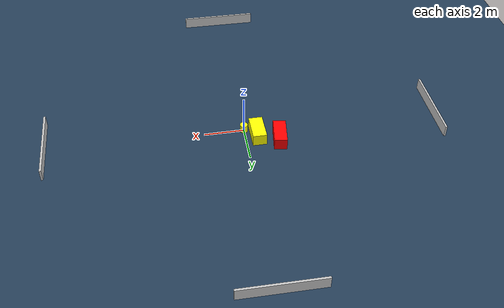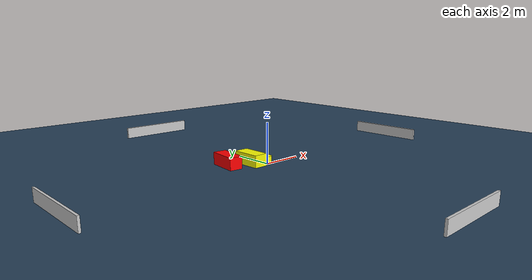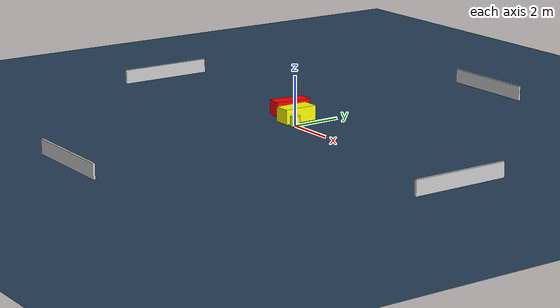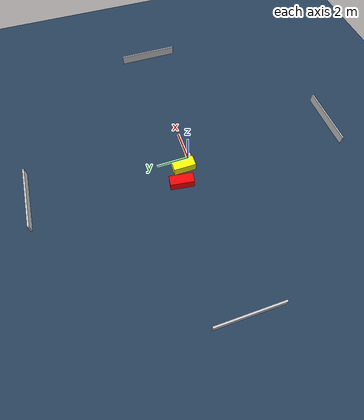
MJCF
<?xml version="1.0" ?>
<mujoco model="generated_environment">
  <option timestep="0.01" integrator="RK4" cone="elliptic"/>
  <default>
    <geom density="1"/>
  </default>
  <asset>
    <texture builtin="gradient" height="3072" name="skybox" rgb1="0.3 0.5 0.7" rgb2="0 0 0" type="skybox" width="512"/>
    <texture builtin="checker" height="300" name="groundplane" rgb1="0.2 0.3 0.4" rgb2="0.1 0.2 0.3" type="2d" width="300"/>
    <material name="groundplane" reflectance="0.2" texrepeat="5 5" texture="groundplane"/>
  </asset>
  <worldbody>
    <light dir="0 0 -1" directional="true" pos="0 0 1.5"/>
    <geom condim="3" friction="0.5 0.005 0.001" material="groundplane" name="floor" pos="0 0 0" size="0 0 0.05" type="plane"/>
    <body name="walls">
      <geom name="wall_1" condim="4" pos="-10.0 0.0 0.3" rgba="0.800000011920929 0.800000011920929 0.800000011920929 1.0" size="0.05 2.0 0.3" type="box"/>
      <geom name="wall_2" condim="4" pos="10.0 0.0 0.3" rgba="0.800000011920929 0.800000011920929 0.800000011920929 1.0" size="0.05 2.0 0.3" type="box"/>
      <geom name="wall_3" condim="4" pos="0.0 -10.0 0.3" rgba="0.800000011920929 0.800000011920929 0.800000011920929 1.0" size="2.0 0.05 0.3" type="box"/>
      <geom name="wall_4" condim="4" pos="0.0 10.0 0.3" rgba="0.800000011920929 0.800000011920929 0.800000011920929 1.0" size="2.0 0.05 0.3" type="box"/>
    </body>
    <body name="robot">
      <joint name="joint_x" type="slide" pos="0 0 0" axis="1 0 0"/>
      <joint name="joint_y" type="slide" pos="0 0 0" axis="0 1 0"/>
      <geom name="robot" type="cylinder" pos="0.0 0.0 0.2" size="0.2 0.2 0.0" mass="5.0" friction="1.0 0.005 0.0001" condim="4" rgba="1.0 1.0 0.0 1.0"/>
    </body>
    <body name="obstacle_1_movable">
      <geom name="obstacle_1_movable" condim="4" pos="-0.6266610107567002 0.4781519486034761 0.3" euler="0 0 180.59352116856348" friction="0.0 0.005 0.001" rgba="1.0 1.0 0.0 1.0" size="0.3495136097131357 0.7040500975031767 0.3" type="box" mass="0.1"/>
      <joint type="free"/>
    </body>
    <body name="obstacle_2_static">
      <geom name="obstacle_2_static" condim="4" pos="-1.6870232849828322 0.9264226220141215 0.3" euler="0 0 352.5486339615156" friction="0.0 0.005 0.001" rgba="1.0 0.0 0.0 1.0" size="0.3234026999890897 0.7419922136087984 0.3" type="box"/>
    </body>
  </worldbody>
  <actuator>
    <motor name="actuator_x" joint="joint_x" gear="1" ctrlrange="-1 1"/>
    <motor name="actuator_y" joint="joint_y" gear="1" ctrlrange="-1 1"/>
  </actuator>
</mujoco>
